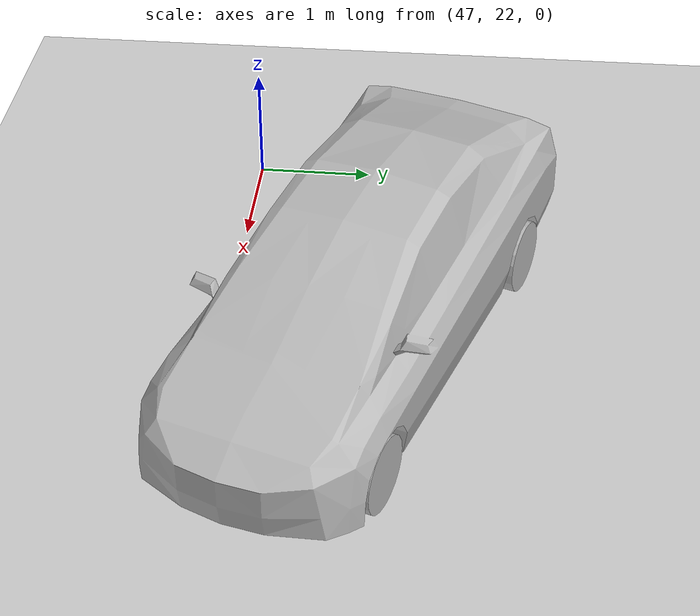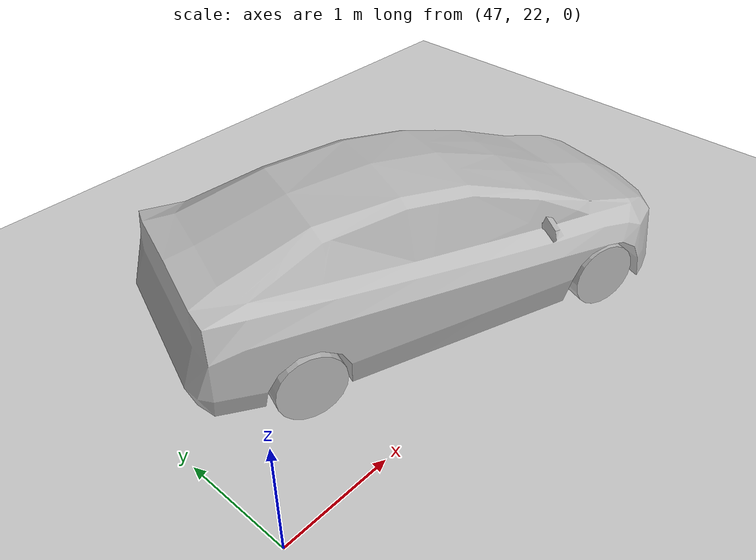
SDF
<sdf version="1.6">
 <world name="default">
  <model name="prius">
   <link name="base_link">
    <inertial>
     <mass>1</mass>
     <inertia><ixx>0.001</ixx><ixy>0</ixy><ixz>0</ixz><iyy>0.001</iyy><iyz>0</iyz><izz>0.001</izz></inertia>
    </inertial>
   </link>
   <link name="chassis">
    <pose>1.45 0 0 0 -0 1.57</pose>
    <inertial>
     <pose>-0 -0.003991 0.482803 0 -0 1.5708</pose>
     <mass>1516</mass>
     <inertia>
      <ixx>2591.33</ixx>
      <ixy>0.000203855</ixy>
      <ixz>-1.05196</ixz>
      <iyy>657.003</iyy>
      <iyz>3.86407e-06</iyz>
      <izz>2749.84</izz>
     </inertia>
    </inertial>
    <collision name="chassis_collision">
     <pose>0 0.05 0.625 0 -0 0</pose>
     <geometry><box><size>1.7526 2.1 0.95</size></box></geometry>
    </collision>
    <collision name="chassis_fixed_joint_lump__front_bumper_collision_1">
     <pose>0 -2 0.458488 0 -0 0</pose>
     <geometry><box><size>1.33728 0.48 0.566691</size></box></geometry>
    </collision>
    <collision name="chassis_fixed_joint_lump__hood_collision_2">
     <pose>0 -1.90084 0.676305 0.341247 -0 0</pose>
     <geometry><box><size>1.59797 0.493107 0.265468</size></box></geometry>
    </collision>
    <collision name="chassis_fixed_joint_lump__windshield_collision_3">
     <pose>0 -0.875105 1.03227 0.335476 -0 0</pose>
     <geometry><box><size>1.16838 1.65425 0.272347</size></box></geometry>
    </collision>
    <collision name="chassis_fixed_joint_lump__top_front_collision_4">
     <pose>0 0.161236 1.38604 0.13503 -0 0</pose>
     <geometry><box><size>1.27915 0.625988 0.171868</size></box></geometry>
    </collision>
    <collision name="chassis_fixed_joint_lump__top_rear_collision_5">
     <pose>0 0.817696 1.36007 -0.068997 0 0</pose>
     <geometry><box><size>1.28513 0.771189 0.226557</size></box></geometry>
    </collision>
    <collision name="chassis_fixed_joint_lump__rear_window_collision_6">
     <pose>0 1.64053 1.17513 -0.262017 0 0</pose>
     <geometry><box><size>1.26785 1.11634 0.244286</size></box></geometry>
    </collision>
    <collision name="chassis_fixed_joint_lump__trunk_collision_7">
     <pose>0 1.63706 0.88818 0 -0 0</pose>
     <geometry><box><size>1.78806 1.13899 0.482746</size></box></geometry>
    </collision>
    <collision name="chassis_fixed_joint_lump__back_bumper_collision_8">
     <pose>0 2.05445 0.57787 0 -0 0</pose>
     <geometry><box><size>1.78165 0.512093 0.581427</size></box></geometry>
    </collision>
    <visual name="chassis_visual">
     <geometry>
      <mesh>
       <scale>0.01 0.01 0.01</scale>
       <uri>/home/vib2810/catkin_ws/src/car_demo/prius_description/meshes/hybrid_body.obj</uri>
      </mesh>
     </geometry>
    </visual>
    <sensor name="back_camera_sensor" type="camera">
     <update_rate>30</update_rate>
     <camera name="back_camera">
      <horizontal_fov>1.39626</horizontal_fov>
      <image><width>800</width><height>800</height><format>R8G8B8</format></image>
      <clip><near>0.02</near><far>300</far></clip>
      <noise><type>gaussian</type><mean>0</mean><stddev>0.007</stddev></noise>
     </camera>
     <plugin name="back_camera_controller" filename="libgazebo_ros_camera.so">
      <alwaysOn>false</alwaysOn>
      <updateRate>0.0</updateRate>
      <cameraName>/prius/back_camera</cameraName>
      <imageTopicName>image_raw</imageTopicName>
      <cameraInfoTopicName>/prius/back_camera_info</cameraInfoTopicName>
      <frameName>camera_link</frameName>
      <hackBaseline>0.07</hackBaseline>
      <distortionK1>0.0</distortionK1>
      <distortionK2>0.0</distortionK2>
      <distortionK3>0.0</distortionK3>
      <distortionT1>0.0</distortionT1>
      <distortionT2>0.0</distortionT2>
      <robotNamespace>/</robotNamespace>
     </plugin>
     <pose>0 1.45 1.4 0 0.05 1.5707</pose>
    </sensor>
    <sensor name="back_left_far_sonar_sensor" type="ray">
     <ray>
      <scan>
       <horizontal>
        <samples>1</samples>
        <resolution>1</resolution>
        <min_angle>0</min_angle>
        <max_angle>0</max_angle>
       </horizontal>
       <vertical><samples>1</samples><min_angle>0</min_angle><max_angle>0</max_angle></vertical>
      </scan>
      <range><min>0.2</min><max>5</max><resolution>0.1</resolution></range>
     </ray>
     <plugin name="back_left_far_sonar_sensor" filename="libgazebo_ros_range.so">
      <topicName>/prius/back_sonar/left_far_range</topicName>
      <frameName>back_left_far_sonar_link</frameName>
      <robotNamespace>/</robotNamespace>
     </plugin>
     <always_on>0</always_on>
     <update_rate>5</update_rate>
     <visualize>0</visualize>
     <pose>0.7 2.4 0.5 0 -0 1.5707</pose>
    </sensor>
    <sensor name="back_left_middle_sonar_sensor" type="ray">
     <ray>
      <scan>
       <horizontal>
        <samples>1</samples>
        <resolution>1</resolution>
        <min_angle>0</min_angle>
        <max_angle>0</max_angle>
       </horizontal>
       <vertical><samples>1</samples><min_angle>0</min_angle><max_angle>0</max_angle></vertical>
      </scan>
      <range><min>0.2</min><max>5</max><resolution>0.1</resolution></range>
     </ray>
     <plugin name="back_left_middle_sonar_sensor" filename="libgazebo_ros_range.so">
      <topicName>/prius/back_sonar/left_middle_range</topicName>
      <frameName>back_left_middle_sonar_link</frameName>
      <robotNamespace>/</robotNamespace>
     </plugin>
     <always_on>0</always_on>
     <update_rate>5</update_rate>
     <visualize>0</visualize>
     <pose>0.24 2.4 0.5 0 -0 1.5707</pose>
    </sensor>
    <sensor name="back_right_far_sonar_sensor" type="ray">
     <ray>
      <scan>
       <horizontal>
        <samples>1</samples>
        <resolution>1</resolution>
        <min_angle>0</min_angle>
        <max_angle>0</max_angle>
       </horizontal>
       <vertical><samples>1</samples><min_angle>0</min_angle><max_angle>0</max_angle></vertical>
      </scan>
      <range><min>0.2</min><max>5</max><resolution>0.1</resolution></range>
     </ray>
     <plugin name="back_right_far_sonar_sensor" filename="libgazebo_ros_range.so">
      <topicName>/prius/back_sonar/right_far_range</topicName>
      <frameName>back_right_far_sonar_link</frameName>
      <robotNamespace>/</robotNamespace>
     </plugin>
     <always_on>0</always_on>
     <update_rate>5</update_rate>
     <visualize>0</visualize>
     <pose>-0.7 2.4 0.5 0 -0 1.5707</pose>
    </sensor>
    <sensor name="back_right_middle_sonar_sensor" type="ray">
     <ray>
      <scan>
       <horizontal>
        <samples>1</samples>
        <resolution>1</resolution>
        <min_angle>0</min_angle>
        <max_angle>0</max_angle>
       </horizontal>
       <vertical><samples>1</samples><min_angle>0</min_angle><max_angle>0</max_angle></vertical>
      </scan>
      <range><min>0.2</min><max>5</max><resolution>0.1</resolution></range>
     </ray>
     <plugin name="back_right_middle_sonar_sensor" filename="libgazebo_ros_range.so">
      <topicName>/prius/back_sonar/right_middle_range</topicName>
      <frameName>back_right_middle_sonar_link</frameName>
      <robotNamespace>/</robotNamespace>
     </plugin>
     <always_on>0</always_on>
     <update_rate>5</update_rate>
     <visualize>0</visualize>
     <pose>-0.24 2.4 0.5 0 -0 1.5707</pose>
    </sensor>
    <sensor name="center_laser_sensor" type="ray">
     <ray>
      <scan>
       <horizontal>
        <samples>512</samples>
        <resolution>1</resolution>
        <min_angle>-3.14</min_angle>
        <max_angle>3.14</max_angle>
       </horizontal>
       <vertical><samples>16</samples><min_angle>-0.1</min_angle><max_angle>-0.35</max_angle></vertical>
      </scan>
      <range><min>0.2</min><max>30</max><resolution>0.01</resolution></range>
     </ray>
     <plugin name="center_laser" filename="libgazebo_ros_block_laser.so">
      <topicName>/prius/center_laser/scan</topicName>
      <frameName>center_laser_link</frameName>
      <robotNamespace>/</robotNamespace>
     </plugin>
     <always_on>1</always_on>
     <update_rate>30</update_rate>
     <visualize>0</visualize>
     <pose>0 0.4 1.8 0 0 -1.5707</pose>
    </sensor>
    <sensor name="front_camera_sensor" type="camera">
     <update_rate>30</update_rate>
     <camera name="front_camera">
      <horizontal_fov>1.39626</horizontal_fov>
      <image><width>800</width><height>800</height><format>R8G8B8</format></image>
      <clip><near>0.02</near><far>300</far></clip>
      <noise><type>gaussian</type><mean>0</mean><stddev>0.007</stddev></noise>
     </camera>
     <plugin name="front_camera_controller" filename="libgazebo_ros_camera.so">
      <alwaysOn>false</alwaysOn>
      <updateRate>0.0</updateRate>
      <cameraName>/prius/front_camera</cameraName>
      <imageTopicName>image_raw</imageTopicName>
      <cameraInfoTopicName>/prius/front_camera_info</cameraInfoTopicName>
      <frameName>camera_link</frameName>
      <hackBaseline>0.07</hackBaseline>
      <distortionK1>0.0</distortionK1>
      <distortionK2>0.0</distortionK2>
      <distortionK3>0.0</distortionK3>
      <distortionT1>0.0</distortionT1>
      <distortionT2>0.0</distortionT2>
      <robotNamespace>/</robotNamespace>
     </plugin>
     <pose>0 -0.4 1.4 0 0.05 -1.5707</pose>
    </sensor>
    <sensor name="front_left_far_sonar_sensor" type="ray">
     <ray>
      <scan>
       <horizontal>
        <samples>1</samples>
        <resolution>1</resolution>
        <min_angle>0</min_angle>
        <max_angle>0</max_angle>
       </horizontal>
       <vertical><samples>1</samples><min_angle>0</min_angle><max_angle>0</max_angle></vertical>
      </scan>
      <range><min>0.2</min><max>5</max><resolution>0.1</resolution></range>
     </ray>
     <plugin name="front_left_far_sonar_sensor" filename="libgazebo_ros_range.so">
      <topicName>/prius/front_sonar/left_far_range</topicName>
      <frameName>front_left_far_sonar_link</frameName>
      <robotNamespace>/</robotNamespace>
     </plugin>
     <always_on>0</always_on>
     <update_rate>5</update_rate>
     <visualize>0</visualize>
     <pose>0.7 -2.1 0.5 0 0 -1.5707</pose>
    </sensor>
    <sensor name="front_left_laser_sensor" type="ray">
     <ray>
      <scan>
       <horizontal>
        <samples>640</samples>
        <resolution>1</resolution>
        <min_angle>-2.26889</min_angle>
        <max_angle>2.2689</max_angle>
       </horizontal>
       <vertical><samples>1</samples><min_angle>0</min_angle><max_angle>0</max_angle></vertical>
      </scan>
      <range><min>0.2</min><max>30</max><resolution>0.01</resolution></range>
     </ray>
     <plugin name="front_left_laser" filename="libgazebo_ros_laser.so">
      <topicName>/prius/front_left_laser/scan</topicName>
      <frameName>front_left_laser_link</frameName>
      <robotNamespace>/</robotNamespace>
     </plugin>
     <always_on>1</always_on>
     <update_rate>30</update_rate>
     <visualize>0</visualize>
     <pose>1 -2.3 0.5 0 0.05 -3.14</pose>
    </sensor>
    <sensor name="front_left_middle_sonar_sensor" type="ray">
     <ray>
      <scan>
       <horizontal>
        <samples>1</samples>
        <resolution>1</resolution>
        <min_angle>0</min_angle>
        <max_angle>0</max_angle>
       </horizontal>
       <vertical><samples>1</samples><min_angle>0</min_angle><max_angle>0</max_angle></vertical>
      </scan>
      <range><min>0.2</min><max>5</max><resolution>0.1</resolution></range>
     </ray>
     <plugin name="front_left_middle_sonar_sensor" filename="libgazebo_ros_range.so">
      <topicName>/prius/front_sonar/left_middle_range</topicName>
      <frameName>front_left_middle_sonar_link</frameName>
      <robotNamespace>/</robotNamespace>
     </plugin>
     <always_on>0</always_on>
     <update_rate>5</update_rate>
     <visualize>0</visualize>
     <pose>0.24 -2.3 0.5 0 0 -1.5707</pose>
    </sensor>
    <sensor name="front_right_far_sonar_sensor" type="ray">
     <ray>
      <scan>
       <horizontal>
        <samples>1</samples>
        <resolution>1</resolution>
        <min_angle>0</min_angle>
        <max_angle>0</max_angle>
       </horizontal>
       <vertical><samples>1</samples><min_angle>0</min_angle><max_angle>0</max_angle></vertical>
      </scan>
      <range><min>0.2</min><max>5</max><resolution>0.1</resolution></range>
     </ray>
     <plugin name="front_right_far_sonar_sensor" filename="libgazebo_ros_range.so">
      <topicName>/prius/front_sonar/right_far_range</topicName>
      <frameName>front_right_far_sonar_link</frameName>
      <robotNamespace>/</robotNamespace>
     </plugin>
     <always_on>0</always_on>
     <update_rate>5</update_rate>
     <visualize>0</visualize>
     <pose>-0.7 -2.1 0.5 0 0 -1.5707</pose>
    </sensor>
    <sensor name="front_right_laser_sensor" type="ray">
     <ray>
      <scan>
       <horizontal>
        <samples>640</samples>
        <resolution>1</resolution>
        <min_angle>-2.26889</min_angle>
        <max_angle>2.2689</max_angle>
       </horizontal>
       <vertical><samples>1</samples><min_angle>0</min_angle><max_angle>0</max_angle></vertical>
      </scan>
      <range><min>0.2</min><max>30</max><resolution>0.01</resolution></range>
     </ray>
     <plugin name="front_right_laser" filename="libgazebo_ros_laser.so">
      <topicName>/prius/front_right_laser/scan</topicName>
      <frameName>front_right_laser_link</frameName>
      <robotNamespace>/</robotNamespace>
     </plugin>
     <always_on>1</always_on>
     <update_rate>30</update_rate>
     <visualize>0</visualize>
     <pose>-1 -2.3 0.5 -0 0.05 3.14</pose>
    </sensor>
    <sensor name="front_right_middle_sonar_sensor" type="ray">
     <ray>
      <scan>
       <horizontal>
        <samples>1</samples>
        <resolution>1</resolution>
        <min_angle>0</min_angle>
        <max_angle>0</max_angle>
       </horizontal>
       <vertical><samples>1</samples><min_angle>0</min_angle><max_angle>0</max_angle></vertical>
      </scan>
      <range><min>0.2</min><max>5</max><resolution>0.1</resolution></range>
     </ray>
     <plugin name="front_right_middle_sonar_sensor" filename="libgazebo_ros_range.so">
      <topicName>/prius/front_sonar/right_middle_range</topicName>
      <frameName>front_right_middle_sonar_link</frameName>
      <robotNamespace>/</robotNamespace>
     </plugin>
     <always_on>0</always_on>
     <update_rate>5</update_rate>
     <visualize>0</visualize>
     <pose>-0.24 -2.3 0.5 0 0 -1.5707</pose>
    </sensor>
    <sensor name="left_camera_sensor" type="camera">
     <update_rate>30</update_rate>
     <camera name="left_camera">
      <horizontal_fov>1.39626</horizontal_fov>
      <image><width>800</width><height>800</height><format>R8G8B8</format></image>
      <clip><near>0.02</near><far>300</far></clip>
      <noise><type>gaussian</type><mean>0</mean><stddev>0.007</stddev></noise>
     </camera>
     <plugin name="left_camera_controller" filename="libgazebo_ros_camera.so">
      <alwaysOn>false</alwaysOn>
      <updateRate>0.0</updateRate>
      <cameraName>/prius/left_camera</cameraName>
      <imageTopicName>image_raw</imageTopicName>
      <cameraInfoTopicName>/prius/left_camera_info</cameraInfoTopicName>
      <frameName>camera_link</frameName>
      <hackBaseline>0.07</hackBaseline>
      <distortionK1>0.0</distortionK1>
      <distortionK2>0.0</distortionK2>
      <distortionK3>0.0</distortionK3>
      <distortionT1>0.0</distortionT1>
      <distortionT2>0.0</distortionT2>
      <robotNamespace>/</robotNamespace>
     </plugin>
     <pose>1 -0.7 1 0 0.05 1</pose>
    </sensor>
    <sensor name="main_laser_sensor" type="ray">
     <ray>
      <scan>
       <horizontal>
        <samples>640</samples>
        <resolution>1</resolution>
        <min_angle>-1.4</min_angle>
        <max_angle>1.4</max_angle>
       </horizontal>
       <vertical><samples>1</samples><min_angle>0</min_angle><max_angle>0</max_angle></vertical>
      </scan>
      <range><min>0.2</min><max>30</max><resolution>0.01</resolution></range>
     </ray>
     <plugin name="main_laser" filename="libgazebo_ros_laser.so">
      <topicName>/prius/main_laser/scan</topicName>
      <frameName>main_laser_link</frameName>
      <robotNamespace>/</robotNamespace>
     </plugin>
     <always_on>1</always_on>
     <update_rate>30</update_rate>
     <visualize>0</visualize>
     <pose>0 -2.3 0.33 0 0 -1.57</pose>
    </sensor>
    <sensor name="right_camera_sensor" type="camera">
     <update_rate>30</update_rate>
     <camera name="right_camera">
      <horizontal_fov>1.39626</horizontal_fov>
      <image><width>800</width><height>800</height><format>R8G8B8</format></image>
      <clip><near>0.02</near><far>300</far></clip>
      <noise><type>gaussian</type><mean>0</mean><stddev>0.007</stddev></noise>
     </camera>
     <plugin name="right_camera_controller" filename="libgazebo_ros_camera.so">
      <alwaysOn>false</alwaysOn>
      <updateRate>0.0</updateRate>
      <cameraName>/prius/right_camera</cameraName>
      <imageTopicName>image_raw</imageTopicName>
      <cameraInfoTopicName>/prius/right_camera_info</cameraInfoTopicName>
      <frameName>camera_link</frameName>
      <hackBaseline>0.07</hackBaseline>
      <distortionK1>0.0</distortionK1>
      <distortionK2>0.0</distortionK2>
      <distortionK3>0.0</distortionK3>
      <distortionT1>0.0</distortionT1>
      <distortionT2>0.0</distortionT2>
      <robotNamespace>/</robotNamespace>
     </plugin>
     <pose>-1 -0.7 1 0 0.05 2.1416</pose>
    </sensor>
   </link>
   <joint name="base_link_connection" type="revolute">
    <child>chassis</child>
    <parent>base_link</parent>
    <axis>
     <limit><lower>0</lower><upper>0</upper></limit>
     <dynamics>
      <damping>0</damping>
      <friction>0</friction>
      <spring_reference>0</spring_reference>
      <spring_stiffness>0</spring_stiffness>
     </dynamics>
     <use_parent_model_frame>1</use_parent_model_frame>
     <xyz>0 0 1</xyz>
    </axis>
    <physics><ode><limit><cfm>0</cfm><erp>0.2</erp></limit></ode></physics>
   </joint>
   <link name="fl_axle">
    <pose>2.86061 0.765877 0.3 0 -0 1.57</pose>
    <inertial>
     <mass>1</mass>
     <inertia><ixx>0.004</ixx><ixy>0</ixy><ixz>0</ixz><iyy>0.004</iyy><iyz>0</iyz><izz>0.004</izz></inertia>
    </inertial>
   </link>
   <joint name="front_left_steer_joint" type="revolute">
    <child>fl_axle</child>
    <parent>chassis</parent>
    <axis>
     <xyz>0 0 1</xyz>
     <limit><lower>-1e+16</lower><upper>1e+16</upper></limit>
     <dynamics><spring_reference>0</spring_reference><spring_stiffness>0</spring_stiffness></dynamics>
     <use_parent_model_frame>1</use_parent_model_frame>
    </axis>
   </joint>
   <link name="front_left_wheel">
    <pose>2.86061 0.765877 0.3 0 -0 1.57</pose>
    <inertial>
     <mass>11</mass>
     <inertia>
      <ixx>0.586312</ixx>
      <ixy>0</ixy>
      <ixz>0</ixz>
      <iyy>0.335529</iyy>
      <iyz>0</iyz>
      <izz>0.335529</izz>
     </inertia>
    </inertial>
    <collision name="front_left_wheel_collision_collision">
     <geometry><sphere><radius>0.31265</radius></sphere></geometry>
     <surface>
      <contact><ode><kp>1e+08</kp><min_depth>0.005</min_depth></ode></contact>
      <friction><ode><mu>0.9</mu><mu2>0.9</mu2></ode></friction>
     </surface>
    </collision>
    <visual name="front_left_wheel_visual">
     <geometry>
      <mesh>
       <scale>0.01 0.01 0.01</scale>
       <uri>/home/vib2810/catkin_ws/src/car_demo/prius_description/meshes/wheel.obj</uri>
      </mesh>
     </geometry>
     <material><script><uri>__default__</uri><name>__default__</name></script></material>
    </visual>
   </link>
   <joint name="front_left_wheel_joint" type="revolute">
    <child>front_left_wheel</child>
    <parent>fl_axle</parent>
    <axis>
     <xyz>0.000796 1 0</xyz>
     <limit><lower>-1e+16</lower><upper>1e+16</upper></limit>
     <dynamics><spring_reference>0</spring_reference><spring_stiffness>0</spring_stiffness></dynamics>
     <use_parent_model_frame>1</use_parent_model_frame>
    </axis>
   </joint>
   <link name="fr_axle">
    <pose>2.85939 -0.768123 0.3 0 -0 1.57</pose>
    <inertial>
     <mass>1</mass>
     <inertia><ixx>0.004</ixx><ixy>0</ixy><ixz>0</ixz><iyy>0.004</iyy><iyz>0</iyz><izz>0.004</izz></inertia>
    </inertial>
   </link>
   <joint name="front_right_steer_joint" type="revolute">
    <child>fr_axle</child>
    <parent>chassis</parent>
    <axis>
     <xyz>0 0 1</xyz>
     <limit><lower>-1e+16</lower><upper>1e+16</upper></limit>
     <dynamics><spring_reference>0</spring_reference><spring_stiffness>0</spring_stiffness></dynamics>
     <use_parent_model_frame>1</use_parent_model_frame>
    </axis>
   </joint>
   <link name="front_right_wheel">
    <pose>2.85939 -0.768123 0.3 0 -0 1.57</pose>
    <inertial>
     <mass>11</mass>
     <inertia>
      <ixx>0.586312</ixx>
      <ixy>0</ixy>
      <ixz>0</ixz>
      <iyy>0.335529</iyy>
      <iyz>0</iyz>
      <izz>0.335529</izz>
     </inertia>
    </inertial>
    <collision name="front_right_wheel_collision_collision">
     <geometry><sphere><radius>0.31265</radius></sphere></geometry>
     <surface>
      <contact><ode><kp>1e+08</kp><min_depth>0.005</min_depth></ode></contact>
      <friction><ode><mu>0.9</mu><mu2>0.9</mu2></ode></friction>
     </surface>
    </collision>
    <visual name="front_right_wheel_visual">
     <geometry>
      <mesh>
       <scale>0.01 0.01 0.01</scale>
       <uri>/home/vib2810/catkin_ws/src/car_demo/prius_description/meshes/wheel.obj</uri>
      </mesh>
     </geometry>
     <material><script><uri>__default__</uri><name>__default__</name></script></material>
    </visual>
   </link>
   <joint name="front_right_wheel_joint" type="revolute">
    <child>front_right_wheel</child>
    <parent>fr_axle</parent>
    <axis>
     <xyz>0.000796 1 0</xyz>
     <limit><lower>-1e+16</lower><upper>1e+16</upper></limit>
     <dynamics><spring_reference>0</spring_reference><spring_stiffness>0</spring_stiffness></dynamics>
     <use_parent_model_frame>1</use_parent_model_frame>
    </axis>
   </joint>
   <link name="rear_left_wheel">
    <pose>0.000632 0.794154 0.3 0 -0 1.57</pose>
    <inertial>
     <mass>11</mass>
     <inertia>
      <ixx>0.586312</ixx>
      <ixy>0</ixy>
      <ixz>0</ixz>
      <iyy>0.335529</iyy>
      <iyz>0</iyz>
      <izz>0.335529</izz>
     </inertia>
    </inertial>
    <collision name="rear_left_wheel_collision_collision">
     <geometry><sphere><radius>0.31265</radius></sphere></geometry>
     <surface>
      <contact><ode><kp>1e+08</kp><min_depth>0.005</min_depth></ode></contact>
      <friction><ode><mu>0.9</mu><mu2>0.9</mu2></ode></friction>
     </surface>
    </collision>
    <visual name="rear_left_wheel_visual">
     <geometry>
      <mesh>
       <scale>0.01 0.01 0.01</scale>
       <uri>/home/vib2810/catkin_ws/src/car_demo/prius_description/meshes/wheel.obj</uri>
      </mesh>
     </geometry>
     <material><script><uri>__default__</uri><name>__default__</name></script></material>
    </visual>
   </link>
   <joint name="rear_left_wheel_joint" type="revolute">
    <child>rear_left_wheel</child>
    <parent>chassis</parent>
    <axis>
     <xyz>0.000796 1 0</xyz>
     <limit><lower>-1e+16</lower><upper>1e+16</upper></limit>
     <dynamics><spring_reference>0</spring_reference><spring_stiffness>0</spring_stiffness></dynamics>
     <use_parent_model_frame>1</use_parent_model_frame>
    </axis>
   </joint>
   <link name="rear_right_wheel">
    <pose>-0.000631 -0.791845 0.3 0 -0 1.57</pose>
    <inertial>
     <mass>11</mass>
     <inertia>
      <ixx>0.586312</ixx>
      <ixy>0</ixy>
      <ixz>0</ixz>
      <iyy>0.335529</iyy>
      <iyz>0</iyz>
      <izz>0.335529</izz>
     </inertia>
    </inertial>
    <collision name="rear_right_wheel_collision_collision">
     <geometry><sphere><radius>0.31265</radius></sphere></geometry>
     <surface>
      <contact><ode><kp>1e+08</kp><min_depth>0.005</min_depth></ode></contact>
      <friction><ode><mu>0.9</mu><mu2>0.9</mu2></ode></friction>
     </surface>
    </collision>
    <visual name="rear_right_wheel_visual">
     <geometry>
      <mesh>
       <scale>0.01 0.01 0.01</scale>
       <uri>/home/vib2810/catkin_ws/src/car_demo/prius_description/meshes/wheel.obj</uri>
      </mesh>
     </geometry>
     <material><script><uri>__default__</uri><name>__default__</name></script></material>
    </visual>
   </link>
   <joint name="rear_right_wheel_joint" type="revolute">
    <child>rear_right_wheel</child>
    <parent>chassis</parent>
    <axis>
     <xyz>0.000796 1 0</xyz>
     <limit><lower>-1e+16</lower><upper>1e+16</upper></limit>
     <dynamics><spring_reference>0</spring_reference><spring_stiffness>0</spring_stiffness></dynamics>
     <use_parent_model_frame>1</use_parent_model_frame>
    </axis>
   </joint>
   <link name="steering_wheel">
    <pose>2.07815 0.357234 0.988243 -1.3021 0 1.57</pose>
    <inertial>
     <mass>1</mass>
     <inertia><ixx>0.145833</ixx><ixy>0</ixy><ixz>0</ixz><iyy>0.145833</iyy><iyz>0</iyz><izz>0.125</izz></inertia>
    </inertial>
    <visual name="steering_wheel_visual">
     <pose>0 0 0 1.3021 -0 0</pose>
     <geometry>
      <mesh>
       <scale>0.01 0.01 0.01</scale>
       <uri>/home/vib2810/catkin_ws/src/car_demo/prius_description/meshes/steering_wheel.obj</uri>
      </mesh>
     </geometry>
    </visual>
   </link>
   <joint name="steering_joint" type="revolute">
    <child>steering_wheel</child>
    <parent>chassis</parent>
    <axis>
     <xyz>-0.964118 0.000768 0.265474</xyz>
     <limit><lower>-1e+16</lower><upper>1e+16</upper></limit>
     <dynamics><spring_reference>0</spring_reference><spring_stiffness>0</spring_stiffness></dynamics>
     <use_parent_model_frame>1</use_parent_model_frame>
    </axis>
   </joint>
   <plugin name="pruis_hybrid_drive" filename="libPriusHybridPlugin.so">
    <chassis>chassis</chassis>
    <front_left_wheel>front_left_wheel_joint</front_left_wheel>
    <front_right_wheel>front_right_wheel_joint</front_right_wheel>
    <front_left_wheel_steering>front_left_steer_joint</front_left_wheel_steering>
    <front_right_wheel_steering>front_right_steer_joint</front_right_wheel_steering>
    <back_left_wheel>rear_left_wheel_joint</back_left_wheel>
    <back_right_wheel>rear_right_wheel_joint</back_right_wheel>
    <steering_wheel>steering_joint</steering_wheel>
    <chassis_aero_force_gain>0.63045</chassis_aero_force_gain>
    <front_torque>859.4004393000001</front_torque>
    <back_torque>0</back_torque>
    <front_brake_torque>1031.28052716</front_brake_torque>
    <back_brake_torque>687.5203514400001</back_brake_torque>
    <max_speed>37.998337013956565</max_speed>
    <min_gas_flow>8.981854013171626e-05</min_gas_flow>
    <gas_efficiency>0.371</gas_efficiency>
    <battery_charge_watt_hours>291</battery_charge_watt_hours>
    <battery_discharge_watt_hours>214</battery_discharge_watt_hours>
    <max_steer>0.6458</max_steer>
    <flwheel_steering_p_gain>1e4</flwheel_steering_p_gain>
    <frwheel_steering_p_gain>1e4</frwheel_steering_p_gain>
    <flwheel_steering_i_gain>0</flwheel_steering_i_gain>
    <frwheel_steering_i_gain>0</frwheel_steering_i_gain>
    <flwheel_steering_d_gain>3e2</flwheel_steering_d_gain>
    <frwheel_steering_d_gain>3e2</frwheel_steering_d_gain>
    <robotNamespace>/</robotNamespace>
   </plugin>
   <plugin name="joint_state_publisher" filename="libgazebo_ros_joint_state_publisher.so">
    <jointName>rear_right_wheel_joint, rear_left_wheel_joint, front_right_wheel_joint, front_left_wheel_joint, front_right_steer_joint, front_left_steer_joint, steering_joint</jointName>
    <updateRate>100.0</updateRate>
    <alwaysOn>true</alwaysOn>
    <robotNamespace>/</robotNamespace>
   </plugin>
   <static>0</static>
   <plugin name="p3d" filename="libgazebo_ros_p3d.so">
    <bodyName>base_link</bodyName>
    <topicName>base_pose_ground_truth</topicName>
    <frameName>map</frameName>
    <updateRate>100.0</updateRate>
    <robotNamespace>/</robotNamespace>
   </plugin>
   <pose>48.2447 23.5757 0.00687 -5e-06 0.000249 -0.333432</pose>
  </model>
  <model name="ground_plane">
   <static>1</static>
   <link name="link">
    <collision name="collision">
     <geometry><plane><normal>0 0 1</normal><size>100 100</size></plane></geometry>
     <surface>
      <contact><collide_bitmask>65535</collide_bitmask></contact>
      <friction><ode><mu>100</mu><mu2>50</mu2></ode></friction>
     </surface>
    </collision>
    <visual name="visual">
     <cast_shadows>0</cast_shadows>
     <geometry><plane><normal>0 0 1</normal><size>100 100</size></plane></geometry>
     <material>
      <script><uri>file://media/materials/scripts/gazebo.material</uri><name>Gazebo/Grey</name></script>
     </material>
    </visual>
   </link>
   <pose>-12.5153 -61.1689 0 0 -0 0</pose>
  </model>
 </world>
</sdf>
